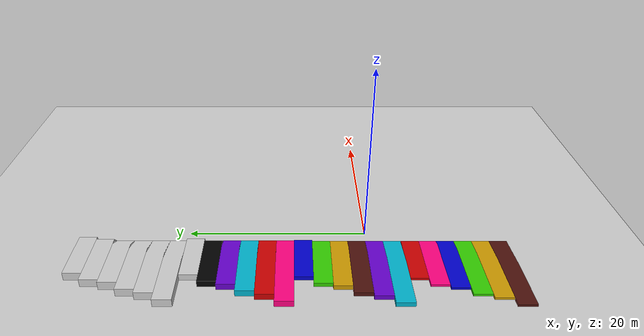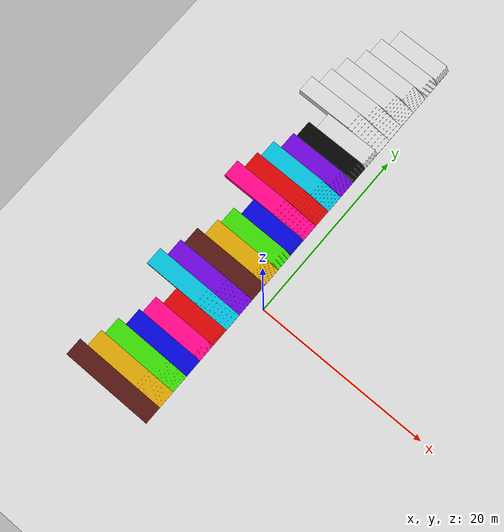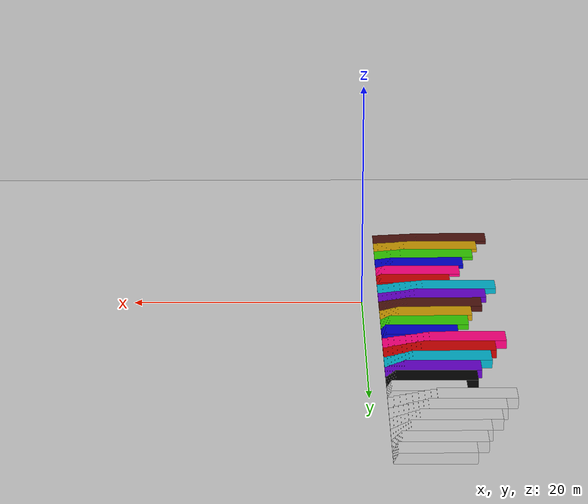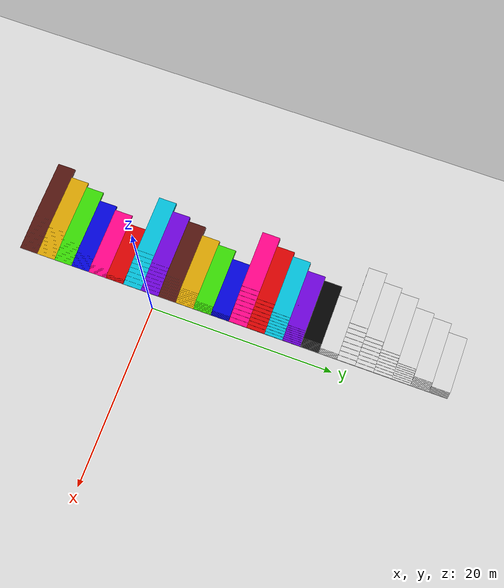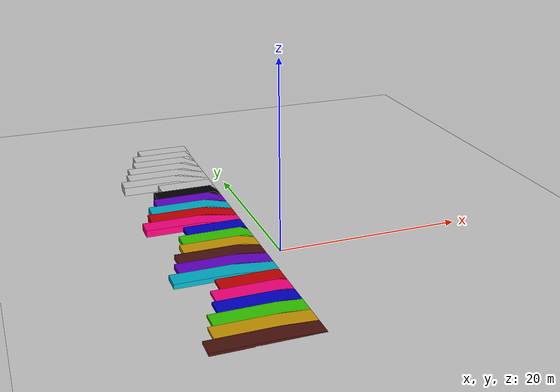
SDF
<sdf version="1.6">
 <world name="default">
  <light name="sun" type="directional">
   <pose>0 0 10 0 -0 0</pose>
   <diffuse>0.8 0.8 0.8 1</diffuse>
   <specular>0.1 0.1 0.1 1</specular>
   <attenuation>
    <range>1000</range>
    <constant>0.9</constant>
    <linear>0.01</linear>
    <quadratic>0.001</quadratic>
   </attenuation>
   <direction>-0.5 0.5 -1</direction>
  </light>
  <model name="ground_plane">
   <static>1</static>
   <link name="link">
    <collision name="collision">
     <geometry><plane><normal>0 0 1</normal><size>100 100</size></plane></geometry>
     <surface><friction><ode><mu>100</mu><mu2>50</mu2></ode></friction></surface>
    </collision>
    <visual name="visual">
     <cast_shadows>0</cast_shadows>
     <geometry><plane><normal>0 0 1</normal><size>100 100</size></plane></geometry>
     <material>
      <script><uri>file://media/materials/scripts/gazebo.material</uri><name>Gazebo/Grey</name></script>
     </material>
    </visual>
   </link>
  </model>
  <gravity>0 0 -9.8</gravity>
  <magnetic_field>6e-06 2.3e-05 -4.2e-05</magnetic_field>
  <atmosphere type="adiabatic"/>
  <physics name="default_physics" default="0" type="ode">
   <max_step_size>0.001</max_step_size>
   <real_time_factor>1</real_time_factor>
   <real_time_update_rate>1000</real_time_update_rate>
  </physics>
  <scene><ambient>0.4 0.4 0.4 1</ambient><background>0.7 0.7 0.7 1</background><shadows>1</shadows></scene>
  <spherical_coordinates>
   <surface_model>EARTH_WGS84</surface_model>
   <latitude_deg>0</latitude_deg>
   <longitude_deg>0</longitude_deg>
   <elevation>0</elevation>
   <heading_deg>0</heading_deg>
  </spherical_coordinates>
  <model name="roboskel_slopeground">
   <static>1</static>
   <link name="slope6_2">
    <collision name="collision">
     <pose>0 -18 0.01 0 -0 0</pose>
     <geometry>
      <mesh><uri>model://roboskel_slopeground/meshes/slope6_2.dae</uri><scale>1 1 1</scale></mesh>
     </geometry>
     <surface>
      <friction><ode><mu>1</mu><mu2>1</mu2></ode></friction>
      <contact><ode><kp>1e+07</kp><kd>1</kd><min_depth>0.001</min_depth><max_vel>0.1</max_vel></ode></contact>
     </surface>
    </collision>
    <visual name="visual">
     <cast_shadows>0</cast_shadows>
     <pose>0 -18 0.01 0 -0 0</pose>
     <geometry>
      <mesh><uri>model://roboskel_slopeground/meshes/slope6_2.dae</uri><scale>1 1 1</scale></mesh>
     </geometry>
     <material>
      <ambient>0.3 0.07 0.05 1</ambient>
      <diffuse>0.3 0.07 0.05 1</diffuse>
      <specular>0.1 0.1 0.1 1</specular>
      <emissive>0 0 0 0</emissive>
     </material>
    </visual>
   </link>
   <link name="slope5_2">
    <collision name="collision">
     <pose>0 -16 0.01 0 -0 0</pose>
     <geometry>
      <mesh><uri>model://roboskel_slopeground/meshes/slope5_2.dae</uri><scale>1 1 1</scale></mesh>
     </geometry>
     <surface>
      <friction><ode><mu>1</mu><mu2>1</mu2></ode></friction>
      <contact><ode><kp>1e+07</kp><kd>1</kd><min_depth>0.001</min_depth><max_vel>0.1</max_vel></ode></contact>
     </surface>
    </collision>
    <visual name="visual">
     <cast_shadows>0</cast_shadows>
     <pose>0 -16 0.01 0 -0 0</pose>
     <geometry>
      <mesh><uri>model://roboskel_slopeground/meshes/slope5_2.dae</uri><scale>1 1 1</scale></mesh>
     </geometry>
     <material>
      <ambient>0.8 0.6 0 1</ambient>
      <diffuse>0.8 0.6 0 1</diffuse>
      <specular>0.1 0.1 0.1 1</specular>
      <emissive>0 0 0 0</emissive>
     </material>
    </visual>
   </link>
   <link name="slope4_2">
    <collision name="collision">
     <pose>0 -14 0.01 0 -0 0</pose>
     <geometry>
      <mesh><uri>model://roboskel_slopeground/meshes/slope4_2.dae</uri><scale>1 1 1</scale></mesh>
     </geometry>
     <surface>
      <friction><ode><mu>1</mu><mu2>1</mu2></ode></friction>
      <contact><ode><kp>1e+07</kp><kd>1</kd><min_depth>0.001</min_depth><max_vel>0.1</max_vel></ode></contact>
     </surface>
    </collision>
    <visual name="visual">
     <cast_shadows>0</cast_shadows>
     <pose>0 -14 0.01 0 -0 0</pose>
     <geometry>
      <mesh><uri>model://roboskel_slopeground/meshes/slope4_2.dae</uri><scale>1 1 1</scale></mesh>
     </geometry>
     <material>
      <ambient>0.2 0.8 0 1</ambient>
      <diffuse>0.2 0.8 0 1</diffuse>
      <specular>0.1 0.1 0.1 1</specular>
      <emissive>0 0 0 0</emissive>
     </material>
    </visual>
   </link>
   <link name="slope3_2">
    <collision name="collision">
     <pose>0 -12 0.01 0 -0 0</pose>
     <geometry>
      <mesh><uri>model://roboskel_slopeground/meshes/slope3_2.dae</uri><scale>1 1 1</scale></mesh>
     </geometry>
     <surface>
      <friction><ode><mu>1</mu><mu2>1</mu2></ode></friction>
      <contact><ode><kp>1e+07</kp><kd>1</kd><min_depth>0.001</min_depth><max_vel>0.1</max_vel></ode></contact>
     </surface>
    </collision>
    <visual name="visual">
     <cast_shadows>0</cast_shadows>
     <pose>0 -12 0.01 0 -0 0</pose>
     <geometry>
      <mesh><uri>model://roboskel_slopeground/meshes/slope3_2.dae</uri><scale>1 1 1</scale></mesh>
     </geometry>
     <material>
      <ambient>0 0 0.8 1</ambient>
      <diffuse>0 0 0.8 1</diffuse>
      <specular>0.1 0.1 0.1 1</specular>
      <emissive>0 0 0 0</emissive>
     </material>
    </visual>
   </link>
   <link name="slope2_2">
    <collision name="collision">
     <pose>0 -10 0.01 0 -0 0</pose>
     <geometry>
      <mesh><uri>model://roboskel_slopeground/meshes/slope2_2.dae</uri><scale>1 1 1</scale></mesh>
     </geometry>
     <surface>
      <friction><ode><mu>1</mu><mu2>1</mu2></ode></friction>
      <contact><ode><kp>1e+07</kp><kd>1</kd><min_depth>0.001</min_depth><max_vel>0.1</max_vel></ode></contact>
     </surface>
    </collision>
    <visual name="visual">
     <cast_shadows>0</cast_shadows>
     <pose>0 -10 0.01 0 -0 0</pose>
     <geometry>
      <mesh><uri>model://roboskel_slopeground/meshes/slope2_2.dae</uri><scale>1 1 1</scale></mesh>
     </geometry>
     <material>
      <ambient>1 0 0.5 1</ambient>
      <diffuse>1 0 0.5 1</diffuse>
      <specular>0.1 0.1 0.1 1</specular>
      <emissive>0 0 0 0</emissive>
     </material>
    </visual>
   </link>
   <link name="slope1_2">
    <collision name="collision">
     <pose>0 -8 0.01 0 -0 0</pose>
     <geometry>
      <mesh><uri>model://roboskel_slopeground/meshes/slope1_2.dae</uri><scale>1 1 1</scale></mesh>
     </geometry>
     <surface>
      <friction><ode><mu>1</mu><mu2>1</mu2></ode></friction>
      <contact><ode><kp>1e+07</kp><kd>1</kd><min_depth>0.001</min_depth><max_vel>0.1</max_vel></ode></contact>
     </surface>
    </collision>
    <visual name="visual">
     <cast_shadows>0</cast_shadows>
     <pose>0 -8 0.01 0 -0 0</pose>
     <geometry>
      <mesh><uri>model://roboskel_slopeground/meshes/slope1_2.dae</uri><scale>1 1 1</scale></mesh>
     </geometry>
     <material>
      <ambient>0.8 0 0 1</ambient>
      <diffuse>0.8 0 0 1</diffuse>
      <specular>0.1 0.1 0.1 1</specular>
      <emissive>0 0 0 0</emissive>
     </material>
    </visual>
   </link>
   <link name="slope6">
    <collision name="collision">
     <pose>0 -6 0.01 0 -0 0</pose>
     <geometry>
      <mesh><uri>model://roboskel_slopeground/meshes/slope6.dae</uri><scale>1 1 1</scale></mesh>
     </geometry>
     <surface>
      <friction><ode><mu>1</mu><mu2>1</mu2></ode></friction>
      <contact><ode><kp>1e+07</kp><kd>1</kd><min_depth>0.001</min_depth><max_vel>0.1</max_vel></ode></contact>
     </surface>
    </collision>
    <visual name="visual">
     <cast_shadows>0</cast_shadows>
     <pose>0 -6 0.01 0 -0 0</pose>
     <geometry>
      <mesh><uri>model://roboskel_slopeground/meshes/slope6.dae</uri><scale>1 1 1</scale></mesh>
     </geometry>
     <material>
      <ambient>0 0.7 0.8 1</ambient>
      <diffuse>0 0.7 0.8 1</diffuse>
      <specular>0.1 0.1 0.1 1</specular>
      <emissive>0 0 0 0</emissive>
     </material>
    </visual>
   </link>
   <link name="slope5">
    <collision name="collision">
     <pose>0 -4 0.01 0 -0 0</pose>
     <geometry>
      <mesh><uri>model://roboskel_slopeground/meshes/slope5.dae</uri><scale>1 1 1</scale></mesh>
     </geometry>
     <surface>
      <friction><ode><mu>1</mu><mu2>1</mu2></ode></friction>
      <contact><ode><kp>1e+07</kp><kd>1</kd><min_depth>0.001</min_depth><max_vel>0.1</max_vel></ode></contact>
     </surface>
    </collision>
    <visual name="visual">
     <cast_shadows>0</cast_shadows>
     <pose>0 -4 0.01 0 -0 0</pose>
     <geometry>
      <mesh><uri>model://roboskel_slopeground/meshes/slope5.dae</uri><scale>1 1 1</scale></mesh>
     </geometry>
     <material>
      <ambient>0.4 0 0.8 1</ambient>
      <diffuse>0.4 0 0.8 1</diffuse>
      <specular>0.1 0.1 0.1 1</specular>
      <emissive>0 0 0 0</emissive>
     </material>
    </visual>
   </link>
   <link name="slope4">
    <collision name="collision">
     <pose>0 -2 0.01 0 -0 0</pose>
     <geometry>
      <mesh><uri>model://roboskel_slopeground/meshes/slope4.dae</uri><scale>1 1 1</scale></mesh>
     </geometry>
     <surface>
      <friction><ode><mu>1</mu><mu2>1</mu2></ode></friction>
      <contact><ode><kp>1e+07</kp><kd>1</kd><min_depth>0.001</min_depth><max_vel>0.1</max_vel></ode></contact>
     </surface>
    </collision>
    <visual name="visual">
     <cast_shadows>0</cast_shadows>
     <pose>0 -2 0.01 0 -0 0</pose>
     <geometry>
      <mesh><uri>model://roboskel_slopeground/meshes/slope4.dae</uri><scale>1 1 1</scale></mesh>
     </geometry>
     <material>
      <ambient>0.3 0.07 0.05 1</ambient>
      <diffuse>0.3 0.07 0.05 1</diffuse>
      <specular>0.1 0.1 0.1 1</specular>
      <emissive>0 0 0 0</emissive>
     </material>
    </visual>
   </link>
   <link name="slope3">
    <collision name="collision">
     <pose>0 0 0.01 0 -0 0</pose>
     <geometry>
      <mesh><uri>model://roboskel_slopeground/meshes/slope3.dae</uri><scale>1 1 1</scale></mesh>
     </geometry>
     <surface>
      <friction><ode><mu>1</mu><mu2>1</mu2></ode></friction>
      <contact><ode><kp>1e+07</kp><kd>1</kd><min_depth>0.001</min_depth><max_vel>0.1</max_vel></ode></contact>
     </surface>
    </collision>
    <visual name="visual">
     <cast_shadows>0</cast_shadows>
     <pose>0 0 0.01 0 -0 0</pose>
     <geometry>
      <mesh><uri>model://roboskel_slopeground/meshes/slope3.dae</uri><scale>1 1 1</scale></mesh>
     </geometry>
     <material>
      <ambient>0.8 0.6 0 1</ambient>
      <diffuse>0.8 0.6 0 1</diffuse>
      <specular>0.1 0.1 0.1 1</specular>
      <emissive>0 0 0 0</emissive>
     </material>
    </visual>
   </link>
   <link name="slope2">
    <collision name="collision">
     <pose>0 2 0.01 0 -0 0</pose>
     <geometry>
      <mesh><uri>model://roboskel_slopeground/meshes/slope2.dae</uri><scale>1 1 1</scale></mesh>
     </geometry>
     <surface>
      <friction><ode><mu>1</mu><mu2>1</mu2></ode></friction>
      <contact><ode><kp>1e+07</kp><kd>1</kd><min_depth>0.001</min_depth><max_vel>0.1</max_vel></ode></contact>
     </surface>
    </collision>
    <visual name="visual">
     <cast_shadows>0</cast_shadows>
     <pose>0 2 0.01 0 -0 0</pose>
     <geometry>
      <mesh><uri>model://roboskel_slopeground/meshes/slope2.dae</uri><scale>1 1 1</scale></mesh>
     </geometry>
     <material>
      <ambient>0.2 0.8 0 1</ambient>
      <diffuse>0.2 0.8 0 1</diffuse>
      <specular>0.1 0.1 0.1 1</specular>
      <emissive>0 0 0 0</emissive>
     </material>
    </visual>
   </link>
   <link name="slope1">
    <collision name="collision">
     <pose>0 4 0.01 0 -0 0</pose>
     <geometry>
      <mesh><uri>model://roboskel_slopeground/meshes/slope1.dae</uri><scale>1 1 1</scale></mesh>
     </geometry>
     <surface>
      <friction><ode><mu>1</mu><mu2>1</mu2></ode></friction>
      <contact><ode><kp>1e+07</kp><kd>1</kd><min_depth>0.001</min_depth><max_vel>0.1</max_vel></ode></contact>
     </surface>
    </collision>
    <visual name="visual">
     <cast_shadows>0</cast_shadows>
     <pose>0 4 0.01 0 -0 0</pose>
     <geometry>
      <mesh><uri>model://roboskel_slopeground/meshes/slope1.dae</uri><scale>1 1 1</scale></mesh>
     </geometry>
     <material>
      <ambient>0 0 0.8 1</ambient>
      <diffuse>0 0 0.8 1</diffuse>
      <specular>0.1 0.1 0.1 1</specular>
      <emissive>0 0 0 0</emissive>
     </material>
    </visual>
   </link>
   <link name="slope6_3">
    <collision name="collision">
     <pose>0 6 0.01 0 -0 0</pose>
     <geometry>
      <mesh><uri>model://roboskel_slopeground/meshes/slope6_3.dae</uri><scale>1 1 1</scale></mesh>
     </geometry>
     <surface>
      <friction><ode><mu>1</mu><mu2>1</mu2></ode></friction>
      <contact><ode><kp>1e+07</kp><kd>1</kd><min_depth>0.001</min_depth><max_vel>0.1</max_vel></ode></contact>
     </surface>
    </collision>
    <visual name="visual">
     <cast_shadows>0</cast_shadows>
     <pose>0 6 0.01 0 -0 0</pose>
     <geometry>
      <mesh><uri>model://roboskel_slopeground/meshes/slope6_3.dae</uri><scale>1 1 1</scale></mesh>
     </geometry>
     <material>
      <ambient>1 0 0.5 1</ambient>
      <diffuse>1 0 0.5 1</diffuse>
      <specular>0.1 0.1 0.1 1</specular>
      <emissive>0 0 0 0</emissive>
     </material>
    </visual>
   </link>
   <link name="slope5_3">
    <collision name="collision">
     <pose>0 8 0.01 0 -0 0</pose>
     <geometry>
      <mesh><uri>model://roboskel_slopeground/meshes/slope5_3.dae</uri><scale>1 1 1</scale></mesh>
     </geometry>
     <surface>
      <friction><ode><mu>1</mu><mu2>1</mu2></ode></friction>
      <contact><ode><kp>1e+07</kp><kd>1</kd><min_depth>0.001</min_depth><max_vel>0.1</max_vel></ode></contact>
     </surface>
    </collision>
    <visual name="visual">
     <cast_shadows>0</cast_shadows>
     <pose>0 8 0.01 0 -0 0</pose>
     <geometry>
      <mesh><uri>model://roboskel_slopeground/meshes/slope5_3.dae</uri><scale>1 1 1</scale></mesh>
     </geometry>
     <material>
      <ambient>0.8 0 0 1</ambient>
      <diffuse>0.8 0 0 1</diffuse>
      <specular>0.1 0.1 0.1 1</specular>
      <emissive>0 0 0 0</emissive>
     </material>
    </visual>
   </link>
   <link name="slope4_3">
    <collision name="collision">
     <pose>0 10 0.01 0 -0 0</pose>
     <geometry>
      <mesh><uri>model://roboskel_slopeground/meshes/slope4_3.dae</uri><scale>1 1 1</scale></mesh>
     </geometry>
     <surface>
      <friction><ode><mu>1</mu><mu2>1</mu2></ode></friction>
      <contact><ode><kp>1e+07</kp><kd>1</kd><min_depth>0.001</min_depth><max_vel>0.1</max_vel></ode></contact>
     </surface>
    </collision>
    <visual name="visual">
     <cast_shadows>0</cast_shadows>
     <pose>0 10 0.01 0 -0 0</pose>
     <geometry>
      <mesh><uri>model://roboskel_slopeground/meshes/slope4_3.dae</uri><scale>1 1 1</scale></mesh>
     </geometry>
     <material>
      <ambient>0 0.7 0.8 1</ambient>
      <diffuse>0 0.7 0.8 1</diffuse>
      <specular>0.1 0.1 0.1 1</specular>
      <emissive>0 0 0 0</emissive>
     </material>
    </visual>
   </link>
   <link name="slope3_3">
    <collision name="collision">
     <pose>0 12 0.01 0 -0 0</pose>
     <geometry>
      <mesh><uri>model://roboskel_slopeground/meshes/slope3_3.dae</uri><scale>1 1 1</scale></mesh>
     </geometry>
     <surface>
      <friction><ode><mu>1</mu><mu2>1</mu2></ode></friction>
      <contact><ode><kp>1e+07</kp><kd>1</kd><min_depth>0.001</min_depth><max_vel>0.1</max_vel></ode></contact>
     </surface>
    </collision>
    <visual name="visual">
     <cast_shadows>0</cast_shadows>
     <pose>0 12 0.01 0 -0 0</pose>
     <geometry>
      <mesh><uri>model://roboskel_slopeground/meshes/slope3_3.dae</uri><scale>1 1 1</scale></mesh>
     </geometry>
     <material>
      <ambient>0.4 0 0.8 1</ambient>
      <diffuse>0.4 0 0.8 1</diffuse>
      <specular>0.1 0.1 0.1 1</specular>
      <emissive>0 0 0 0</emissive>
     </material>
    </visual>
   </link>
   <link name="slope2_3">
    <collision name="collision">
     <pose>0 14 0.01 0 -0 0</pose>
     <geometry>
      <mesh><uri>model://roboskel_slopeground/meshes/slope2_3.dae</uri><scale>1 1 1</scale></mesh>
     </geometry>
     <surface>
      <friction><ode><mu>1</mu><mu2>1</mu2></ode></friction>
      <contact><ode><kp>1e+07</kp><kd>1</kd><min_depth>0.001</min_depth><max_vel>0.1</max_vel></ode></contact>
     </surface>
    </collision>
    <visual name="visual">
     <cast_shadows>0</cast_shadows>
     <pose>0 14 0.01 0 -0 0</pose>
     <geometry>
      <mesh><uri>model://roboskel_slopeground/meshes/slope2_3.dae</uri><scale>1 1 1</scale></mesh>
     </geometry>
     <material>
      <ambient>0 0 0 1</ambient>
      <diffuse>0 0 0 1</diffuse>
      <specular>0.1 0.1 0.1 1</specular>
      <emissive>0 0 0 0</emissive>
     </material>
    </visual>
   </link>
   <link name="slope1_3">
    <collision name="collision">
     <pose>0 16 0.01 0 -0 0</pose>
     <geometry>
      <mesh><uri>model://roboskel_slopeground/meshes/slope1_3.dae</uri><scale>1 1 1</scale></mesh>
     </geometry>
     <surface>
      <friction><ode><mu>1</mu><mu2>1</mu2></ode></friction>
      <contact><ode><kp>1e+07</kp><kd>1</kd><min_depth>0.001</min_depth><max_vel>0.1</max_vel></ode></contact>
     </surface>
    </collision>
    <visual name="visual">
     <cast_shadows>0</cast_shadows>
     <pose>0 16 0.01 0 -0 0</pose>
     <geometry>
      <mesh><uri>model://roboskel_slopeground/meshes/slope1_3.dae</uri><scale>1 1 1</scale></mesh>
     </geometry>
     <material>
      <ambient>0.8 0.8 0.8 1</ambient>
      <diffuse>0.8 0.8 0.8 1</diffuse>
      <specular>0.1 0.1 0.1 1</specular>
      <emissive>0 0 0 0</emissive>
     </material>
    </visual>
   </link>
   <link name="slope6_4">
    <collision name="collision">
     <pose>0 18 0.01 0 -0 0</pose>
     <geometry>
      <mesh><uri>model://roboskel_slopeground/meshes/slope6_4.dae</uri><scale>1 1 1</scale></mesh>
     </geometry>
     <surface>
      <friction><ode><mu>1</mu><mu2>1</mu2></ode></friction>
      <contact><ode><kp>1e+07</kp><kd>1</kd><min_depth>0.001</min_depth><max_vel>0.1</max_vel></ode></contact>
     </surface>
    </collision>
    <visual name="visual">
     <cast_shadows>0</cast_shadows>
     <pose>0 18 0.01 0 -0 0</pose>
     <geometry>
      <mesh><uri>model://roboskel_slopeground/meshes/slope6_4.dae</uri><scale>1 1 1</scale></mesh>
     </geometry>
     <material>
      <ambient>0.8 0.8 0.8 1</ambient>
      <diffuse>0.8 0.8 0.8 1</diffuse>
      <specular>0.1 0.1 0.1 1</specular>
      <emissive>0 0 0 0</emissive>
     </material>
    </visual>
   </link>
   <link name="slope5_4">
    <collision name="collision">
     <pose>0 20 0.01 0 -0 0</pose>
     <geometry>
      <mesh><uri>model://roboskel_slopeground/meshes/slope5_4.dae</uri><scale>1 1 1</scale></mesh>
     </geometry>
     <surface>
      <friction><ode><mu>1</mu><mu2>1</mu2></ode></friction>
      <contact><ode><kp>1e+07</kp><kd>1</kd><min_depth>0.001</min_depth><max_vel>0.1</max_vel></ode></contact>
     </surface>
    </collision>
    <visual name="visual">
     <cast_shadows>0</cast_shadows>
     <pose>0 20 0.01 0 -0 0</pose>
     <geometry>
      <mesh><uri>model://roboskel_slopeground/meshes/slope5_4.dae</uri><scale>1 1 1</scale></mesh>
     </geometry>
     <material>
      <ambient>0.8 0.8 0.8 1</ambient>
      <diffuse>0.8 0.8 0.8 1</diffuse>
      <specular>0.1 0.1 0.1 1</specular>
      <emissive>0 0 0 0</emissive>
     </material>
    </visual>
   </link>
   <link name="slope4_4">
    <collision name="collision">
     <pose>0 22 0.01 0 -0 0</pose>
     <geometry>
      <mesh><uri>model://roboskel_slopeground/meshes/slope4_4.dae</uri><scale>1 1 1</scale></mesh>
     </geometry>
     <surface>
      <friction><ode><mu>1</mu><mu2>1</mu2></ode></friction>
      <contact><ode><kp>1e+07</kp><kd>1</kd><min_depth>0.001</min_depth><max_vel>0.1</max_vel></ode></contact>
     </surface>
    </collision>
    <visual name="visual">
     <cast_shadows>0</cast_shadows>
     <pose>0 22 0.01 0 -0 0</pose>
     <geometry>
      <mesh><uri>model://roboskel_slopeground/meshes/slope4_4.dae</uri><scale>1 1 1</scale></mesh>
     </geometry>
     <material>
      <ambient>0.8 0.8 0.8 1</ambient>
      <diffuse>0.8 0.8 0.8 1</diffuse>
      <specular>0.1 0.1 0.1 1</specular>
      <emissive>0 0 0 0</emissive>
     </material>
    </visual>
   </link>
   <link name="slope3_4">
    <collision name="collision">
     <pose>0 24 0.01 0 -0 0</pose>
     <geometry>
      <mesh><uri>model://roboskel_slopeground/meshes/slope3_4.dae</uri><scale>1 1 1</scale></mesh>
     </geometry>
     <surface>
      <friction><ode><mu>1</mu><mu2>1</mu2></ode></friction>
      <contact><ode><kp>1e+07</kp><kd>1</kd><min_depth>0.001</min_depth><max_vel>0.1</max_vel></ode></contact>
     </surface>
    </collision>
    <visual name="visual">
     <cast_shadows>0</cast_shadows>
     <pose>0 24 0.01 0 -0 0</pose>
     <geometry>
      <mesh><uri>model://roboskel_slopeground/meshes/slope3_4.dae</uri><scale>1 1 1</scale></mesh>
     </geometry>
     <material>
      <ambient>0.8 0.8 0.8 1</ambient>
      <diffuse>0.8 0.8 0.8 1</diffuse>
      <specular>0.1 0.1 0.1 1</specular>
      <emissive>0 0 0 0</emissive>
     </material>
    </visual>
   </link>
   <link name="slope2_4">
    <collision name="collision">
     <pose>0 26 0.01 0 -0 0</pose>
     <geometry>
      <mesh><uri>model://roboskel_slopeground/meshes/slope2_4.dae</uri><scale>1 1 1</scale></mesh>
     </geometry>
     <surface>
      <friction><ode><mu>1</mu><mu2>1</mu2></ode></friction>
      <contact><ode><kp>1e+07</kp><kd>1</kd><min_depth>0.001</min_depth><max_vel>0.1</max_vel></ode></contact>
     </surface>
    </collision>
    <visual name="visual">
     <cast_shadows>0</cast_shadows>
     <pose>0 26 0.01 0 -0 0</pose>
     <geometry>
      <mesh><uri>model://roboskel_slopeground/meshes/slope2_4.dae</uri><scale>1 1 1</scale></mesh>
     </geometry>
     <material>
      <ambient>0.8 0.8 0.8 1</ambient>
      <diffuse>0.8 0.8 0.8 1</diffuse>
      <specular>0.1 0.1 0.1 1</specular>
      <emissive>0 0 0 0</emissive>
     </material>
    </visual>
   </link>
   <link name="slope1_4">
    <collision name="collision">
     <pose>0 28 0.01 0 -0 0</pose>
     <geometry>
      <mesh><uri>model://roboskel_slopeground/meshes/slope1_4.dae</uri><scale>1 1 1</scale></mesh>
     </geometry>
     <surface>
      <friction><ode><mu>1</mu><mu2>1</mu2></ode></friction>
      <contact><ode><kp>1e+07</kp><kd>1</kd><min_depth>0.001</min_depth><max_vel>0.1</max_vel></ode></contact>
     </surface>
    </collision>
    <visual name="visual">
     <cast_shadows>0</cast_shadows>
     <pose>0 28 0.01 0 -0 0</pose>
     <geometry>
      <mesh><uri>model://roboskel_slopeground/meshes/slope1_4.dae</uri><scale>1 1 1</scale></mesh>
     </geometry>
     <material>
      <ambient>0.8 0.8 0.8 1</ambient>
      <diffuse>0.8 0.8 0.8 1</diffuse>
      <specular>0.1 0.1 0.1 1</specular>
      <emissive>0 0 0 0</emissive>
     </material>
    </visual>
   </link>
   <pose>-4.47239 3.07298 0 0 -0 0</pose>
  </model>
 </world>
</sdf>
